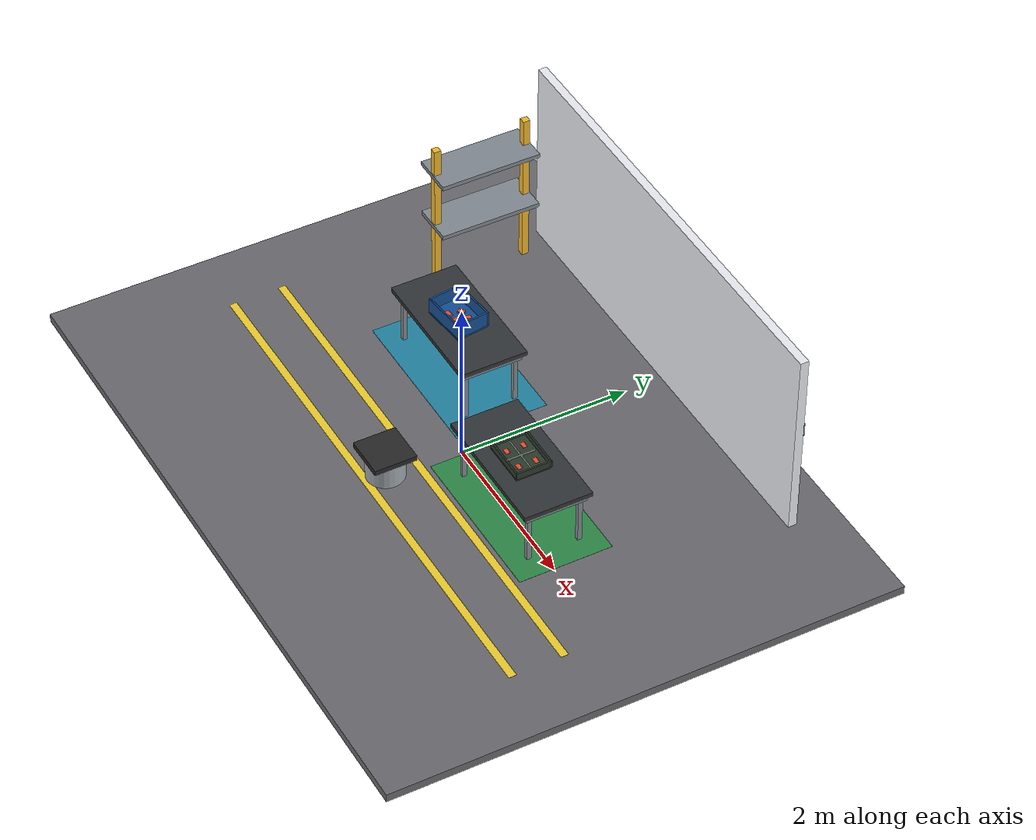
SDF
<?xml version="1.0"?>
<sdf version="1.6">
  <world name="factory_binpick">
    <gravity>0 0 -9.81</gravity>
    <scene>
      <ambient>0.70 0.72 0.75 1</ambient>
      <background>0.93 0.95 0.98 1</background>
      <shadows>true</shadows>
    </scene>
    <physics type="ode">
      <max_step_size>0.001</max_step_size>
      <real_time_update_rate>1000</real_time_update_rate>
      <real_time_factor>1</real_time_factor>
    </physics>

    <light name="sun" type="directional">
      <cast_shadows>true</cast_shadows>
      <pose>0 0 8 0 0 0</pose>
      <diffuse>0.98 0.98 0.95 1</diffuse>
      <specular>0.2 0.2 0.2 1</specular>
      <attenuation>
        <range>200</range>
        <constant>0.9</constant>
        <linear>0.01</linear>
        <quadratic>0.001</quadratic>
      </attenuation>
      <direction>-0.3 0.1 -0.95</direction>
    </light>

    <include>
      <uri>model://factory_floor</uri>
      <pose>0 0 0 0 0 0</pose>
    </include>

    <include>
      <uri>model://work_table</uri>
      <name>source_table</name>
      <pose>-1.10 0.55 0 0 0 0</pose>
    </include>

    <include>
      <uri>model://work_table</uri>
      <name>dest_table</name>
      <pose>1.10 0.10 0 0 0 0</pose>
    </include>

    <include>
      <uri>model://parts_bin</uri>
      <pose>-1.10 0.55 0.80 0 0 0.12</pose>
    </include>

    <include>
      <uri>model://kitting_tray</uri>
      <pose>1.10 0.10 0.80 0 0 0</pose>
    </include>

    <include>
      <uri>model://battery_brick</uri>
      <name>part_a</name>
      <pose>-1.18 0.47 0.845 0 0 0.15</pose>
    </include>

    <include>
      <uri>model://battery_brick</uri>
      <name>part_b</name>
      <pose>-1.06 0.49 0.845 0 0 1.57</pose>
    </include>

    <include>
      <uri>model://battery_brick</uri>
      <name>part_c</name>
      <pose>-1.15 0.61 0.845 0 0 0.70</pose>
    </include>

    <include>
      <uri>model://battery_brick</uri>
      <name>part_d</name>
      <pose>-1.03 0.62 0.845 0 0 1.20</pose>
    </include>

    <model name="robot_pedestal">
      <static>true</static>
      <pose>0 -0.92 0 0 0 0</pose>
      <link name="body">
        <collision name="base_collision">
          <pose>0 0 0.20 0 0 0</pose>
          <geometry>
            <cylinder>
              <radius>0.22</radius>
              <length>0.40</length>
            </cylinder>
          </geometry>
        </collision>
        <collision name="top_collision">
          <pose>0 0 0.43 0 0 0</pose>
          <geometry>
            <box>
              <size>0.50 0.50 0.06</size>
            </box>
          </geometry>
        </collision>
        <visual name="base_visual">
          <pose>0 0 0.20 0 0 0</pose>
          <geometry>
            <cylinder>
              <radius>0.22</radius>
              <length>0.40</length>
            </cylinder>
          </geometry>
          <material>
            <ambient>0.55 0.58 0.61 1</ambient>
            <diffuse>0.64 0.67 0.70 1</diffuse>
          </material>
        </visual>
        <visual name="top_visual">
          <pose>0 0 0.43 0 0 0</pose>
          <geometry>
            <box>
              <size>0.50 0.50 0.06</size>
            </box>
          </geometry>
          <material>
            <ambient>0.12 0.12 0.12 1</ambient>
            <diffuse>0.16 0.16 0.16 1</diffuse>
          </material>
        </visual>
      </link>
    </model>

    <model name="back_wall">
      <static>true</static>
      <pose>0 2.45 0 0 0 0</pose>
      <link name="wall">
        <collision name="wall_collision">
          <pose>0 0 1.20 0 0 0</pose>
          <geometry>
            <box>
              <size>5.40 0.10 2.40</size>
            </box>
          </geometry>
        </collision>
        <visual name="wall_visual">
          <pose>0 0 1.20 0 0 0</pose>
          <geometry>
            <box>
              <size>5.40 0.10 2.40</size>
            </box>
          </geometry>
          <material>
            <ambient>0.89 0.90 0.92 1</ambient>
            <diffuse>0.94 0.95 0.97 1</diffuse>
          </material>
        </visual>
        <visual name="accent_band">
          <pose>0 0.056 1.45 0 0 0</pose>
          <geometry>
            <box>
              <size>5.40 0.01 0.18</size>
            </box>
          </geometry>
          <material>
            <ambient>0.10 0.33 0.58 1</ambient>
            <diffuse>0.12 0.40 0.70 1</diffuse>
          </material>
        </visual>
      </link>
    </model>

    <model name="storage_rack">
      <static>true</static>
      <pose>-2.45 1.55 0 0 0 1.57</pose>
      <link name="rack">
        <visual name="upright_left">
          <pose>0.55 0 1.0 0 0 0</pose>
          <geometry>
            <box>
              <size>0.08 0.08 2.0</size>
            </box>
          </geometry>
          <material>
            <ambient>0.92 0.68 0.15 1</ambient>
            <diffuse>0.96 0.73 0.18 1</diffuse>
          </material>
        </visual>
        <visual name="upright_right">
          <pose>-0.55 0 1.0 0 0 0</pose>
          <geometry>
            <box>
              <size>0.08 0.08 2.0</size>
            </box>
          </geometry>
          <material>
            <ambient>0.92 0.68 0.15 1</ambient>
            <diffuse>0.96 0.73 0.18 1</diffuse>
          </material>
        </visual>
        <visual name="shelf_top">
          <pose>0 0 1.65 0 0 0</pose>
          <geometry>
            <box>
              <size>1.20 0.50 0.05</size>
            </box>
          </geometry>
          <material>
            <ambient>0.44 0.47 0.50 1</ambient>
            <diffuse>0.52 0.55 0.58 1</diffuse>
          </material>
        </visual>
        <visual name="shelf_mid">
          <pose>0 0 0.95 0 0 0</pose>
          <geometry>
            <box>
              <size>1.20 0.50 0.05</size>
            </box>
          </geometry>
          <material>
            <ambient>0.44 0.47 0.50 1</ambient>
            <diffuse>0.52 0.55 0.58 1</diffuse>
          </material>
        </visual>
      </link>
    </model>

    <gui fullscreen="0">
      <camera name="demo_camera">
        <pose>0.00 -4.35 2.70 0 0.60 1.57</pose>
      </camera>
    </gui>
  </world>
</sdf>

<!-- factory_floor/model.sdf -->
<sdf version="1.6">
  <model name="factory_floor">
    <static>true</static>
    <link name="floor">
      <collision name="slab_collision">
        <pose>0 0 0.05 0 0 0</pose>
        <geometry>
          <box>
            <size>8.0 6.0 0.10</size>
          </box>
        </geometry>
      </collision>
      <visual name="slab_visual">
        <pose>0 0 0.05 0 0 0</pose>
        <geometry>
          <box>
            <size>8.0 6.0 0.10</size>
          </box>
        </geometry>
        <material>
          <ambient>0.36 0.36 0.38 1</ambient>
          <diffuse>0.42 0.42 0.44 1</diffuse>
          <specular>0.08 0.08 0.08 1</specular>
        </material>
      </visual>
      <visual name="lane_left">
        <pose>0 -1.15 0.101 0 0 0</pose>
        <geometry>
          <box>
            <size>6.4 0.09 0.002</size>
          </box>
        </geometry>
        <material>
          <ambient>0.92 0.78 0.15 1</ambient>
          <diffuse>0.95 0.82 0.18 1</diffuse>
        </material>
      </visual>
      <visual name="lane_right">
        <pose>0 -0.55 0.101 0 0 0</pose>
        <geometry>
          <box>
            <size>6.4 0.09 0.002</size>
          </box>
        </geometry>
        <material>
          <ambient>0.92 0.78 0.15 1</ambient>
          <diffuse>0.95 0.82 0.18 1</diffuse>
        </material>
      </visual>
      <visual name="staging_pad_source">
        <pose>-1.10 0.55 0.101 0 0 0</pose>
        <geometry>
          <box>
            <size>1.95 1.10 0.002</size>
          </box>
        </geometry>
        <material>
          <ambient>0.12 0.43 0.53 1</ambient>
          <diffuse>0.14 0.52 0.64 1</diffuse>
        </material>
      </visual>
      <visual name="staging_pad_dest">
        <pose>1.10 0.10 0.101 0 0 0</pose>
        <geometry>
          <box>
            <size>1.95 1.10 0.002</size>
          </box>
        </geometry>
        <material>
          <ambient>0.16 0.44 0.24 1</ambient>
          <diffuse>0.18 0.54 0.28 1</diffuse>
        </material>
      </visual>
    </link>
  </model>
</sdf>

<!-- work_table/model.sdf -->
<sdf version="1.6">
  <model name="work_table">
    <static>true</static>
    <link name="table">
      <collision name="top_collision">
        <pose>0 0 0.775 0 0 0</pose>
        <geometry>
          <box>
            <size>1.60 0.80 0.05</size>
          </box>
        </geometry>
      </collision>
      <collision name="leg_fl_collision">
        <pose>0.70 0.30 0.375 0 0 0</pose>
        <geometry>
          <box>
            <size>0.05 0.05 0.75</size>
          </box>
        </geometry>
      </collision>
      <collision name="leg_fr_collision">
        <pose>0.70 -0.30 0.375 0 0 0</pose>
        <geometry>
          <box>
            <size>0.05 0.05 0.75</size>
          </box>
        </geometry>
      </collision>
      <collision name="leg_rl_collision">
        <pose>-0.70 0.30 0.375 0 0 0</pose>
        <geometry>
          <box>
            <size>0.05 0.05 0.75</size>
          </box>
        </geometry>
      </collision>
      <collision name="leg_rr_collision">
        <pose>-0.70 -0.30 0.375 0 0 0</pose>
        <geometry>
          <box>
            <size>0.05 0.05 0.75</size>
          </box>
        </geometry>
      </collision>
      <visual name="top_visual">
        <pose>0 0 0.775 0 0 0</pose>
        <geometry>
          <box>
            <size>1.60 0.80 0.05</size>
          </box>
        </geometry>
        <material>
          <ambient>0.16 0.17 0.18 1</ambient>
          <diffuse>0.20 0.21 0.22 1</diffuse>
          <specular>0.06 0.06 0.06 1</specular>
        </material>
      </visual>
      <visual name="frame_visual">
        <pose>0 0 0.69 0 0 0</pose>
        <geometry>
          <box>
            <size>1.52 0.72 0.03</size>
          </box>
        </geometry>
        <material>
          <ambient>0.43 0.46 0.48 1</ambient>
          <diffuse>0.52 0.55 0.57 1</diffuse>
        </material>
      </visual>
      <visual name="leg_fl_visual">
        <pose>0.70 0.30 0.375 0 0 0</pose>
        <geometry>
          <box>
            <size>0.05 0.05 0.75</size>
          </box>
        </geometry>
        <material>
          <ambient>0.43 0.46 0.48 1</ambient>
          <diffuse>0.52 0.55 0.57 1</diffuse>
        </material>
      </visual>
      <visual name="leg_fr_visual">
        <pose>0.70 -0.30 0.375 0 0 0</pose>
        <geometry>
          <box>
            <size>0.05 0.05 0.75</size>
          </box>
        </geometry>
        <material>
          <ambient>0.43 0.46 0.48 1</ambient>
          <diffuse>0.52 0.55 0.57 1</diffuse>
        </material>
      </visual>
      <visual name="leg_rl_visual">
        <pose>-0.70 0.30 0.375 0 0 0</pose>
        <geometry>
          <box>
            <size>0.05 0.05 0.75</size>
          </box>
        </geometry>
        <material>
          <ambient>0.43 0.46 0.48 1</ambient>
          <diffuse>0.52 0.55 0.57 1</diffuse>
        </material>
      </visual>
      <visual name="leg_rr_visual">
        <pose>-0.70 -0.30 0.375 0 0 0</pose>
        <geometry>
          <box>
            <size>0.05 0.05 0.75</size>
          </box>
        </geometry>
        <material>
          <ambient>0.43 0.46 0.48 1</ambient>
          <diffuse>0.52 0.55 0.57 1</diffuse>
        </material>
      </visual>
    </link>
  </model>
</sdf>

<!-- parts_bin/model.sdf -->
<sdf version="1.6">
  <model name="parts_bin">
    <static>true</static>
    <link name="bin">
      <collision name="base_collision">
        <pose>0 0 0.02 0 0 0</pose>
        <geometry>
          <box>
            <size>0.55 0.40 0.04</size>
          </box>
        </geometry>
      </collision>
      <collision name="wall_left_collision">
        <pose>0.265 0 0.11 0 0 0</pose>
        <geometry>
          <box>
            <size>0.02 0.40 0.18</size>
          </box>
        </geometry>
      </collision>
      <collision name="wall_right_collision">
        <pose>-0.265 0 0.11 0 0 0</pose>
        <geometry>
          <box>
            <size>0.02 0.40 0.18</size>
          </box>
        </geometry>
      </collision>
      <collision name="wall_front_collision">
        <pose>0 0.19 0.11 0 0 0</pose>
        <geometry>
          <box>
            <size>0.55 0.02 0.18</size>
          </box>
        </geometry>
      </collision>
      <collision name="wall_back_collision">
        <pose>0 -0.19 0.11 0 0 0</pose>
        <geometry>
          <box>
            <size>0.55 0.02 0.18</size>
          </box>
        </geometry>
      </collision>
      <visual name="base_visual">
        <pose>0 0 0.02 0 0 0</pose>
        <geometry>
          <box>
            <size>0.55 0.40 0.04</size>
          </box>
        </geometry>
        <material>
          <ambient>0.06 0.24 0.44 1</ambient>
          <diffuse>0.08 0.31 0.58 1</diffuse>
        </material>
      </visual>
      <visual name="wall_left_visual">
        <pose>0.265 0 0.11 0 0 0</pose>
        <geometry>
          <box>
            <size>0.02 0.40 0.18</size>
          </box>
        </geometry>
        <material>
          <ambient>0.06 0.24 0.44 1</ambient>
          <diffuse>0.08 0.31 0.58 1</diffuse>
        </material>
      </visual>
      <visual name="wall_right_visual">
        <pose>-0.265 0 0.11 0 0 0</pose>
        <geometry>
          <box>
            <size>0.02 0.40 0.18</size>
          </box>
        </geometry>
        <material>
          <ambient>0.06 0.24 0.44 1</ambient>
          <diffuse>0.08 0.31 0.58 1</diffuse>
        </material>
      </visual>
      <visual name="wall_front_visual">
        <pose>0 0.19 0.11 0 0 0</pose>
        <geometry>
          <box>
            <size>0.55 0.02 0.18</size>
          </box>
        </geometry>
        <material>
          <ambient>0.06 0.24 0.44 1</ambient>
          <diffuse>0.08 0.31 0.58 1</diffuse>
        </material>
      </visual>
      <visual name="wall_back_visual">
        <pose>0 -0.19 0.11 0 0 0</pose>
        <geometry>
          <box>
            <size>0.55 0.02 0.18</size>
          </box>
        </geometry>
        <material>
          <ambient>0.06 0.24 0.44 1</ambient>
          <diffuse>0.08 0.31 0.58 1</diffuse>
        </material>
      </visual>
      <visual name="label_visual">
        <pose>0 0.205 0.13 0 0 0</pose>
        <geometry>
          <box>
            <size>0.22 0.003 0.08</size>
          </box>
        </geometry>
        <material>
          <ambient>0.95 0.95 0.95 1</ambient>
          <diffuse>0.98 0.98 0.98 1</diffuse>
        </material>
      </visual>
    </link>
  </model>
</sdf>

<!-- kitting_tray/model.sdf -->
<sdf version="1.6">
  <model name="kitting_tray">
    <static>true</static>
    <link name="tray">
      <collision name="base_collision">
        <pose>0 0 0.015 0 0 0</pose>
        <geometry>
          <box>
            <size>0.56 0.42 0.03</size>
          </box>
        </geometry>
      </collision>
      <collision name="wall_left_collision">
        <pose>0.27 0 0.055 0 0 0</pose>
        <geometry>
          <box>
            <size>0.02 0.42 0.08</size>
          </box>
        </geometry>
      </collision>
      <collision name="wall_right_collision">
        <pose>-0.27 0 0.055 0 0 0</pose>
        <geometry>
          <box>
            <size>0.02 0.42 0.08</size>
          </box>
        </geometry>
      </collision>
      <collision name="wall_front_collision">
        <pose>0 0.20 0.055 0 0 0</pose>
        <geometry>
          <box>
            <size>0.56 0.02 0.08</size>
          </box>
        </geometry>
      </collision>
      <collision name="wall_back_collision">
        <pose>0 -0.20 0.055 0 0 0</pose>
        <geometry>
          <box>
            <size>0.56 0.02 0.08</size>
          </box>
        </geometry>
      </collision>
      <visual name="base_visual">
        <pose>0 0 0.015 0 0 0</pose>
        <geometry>
          <box>
            <size>0.56 0.42 0.03</size>
          </box>
        </geometry>
        <material>
          <ambient>0.14 0.18 0.14 1</ambient>
          <diffuse>0.18 0.23 0.18 1</diffuse>
        </material>
      </visual>
      <visual name="wall_left_visual">
        <pose>0.27 0 0.055 0 0 0</pose>
        <geometry>
          <box>
            <size>0.02 0.42 0.08</size>
          </box>
        </geometry>
        <material>
          <ambient>0.14 0.18 0.14 1</ambient>
          <diffuse>0.18 0.23 0.18 1</diffuse>
        </material>
      </visual>
      <visual name="wall_right_visual">
        <pose>-0.27 0 0.055 0 0 0</pose>
        <geometry>
          <box>
            <size>0.02 0.42 0.08</size>
          </box>
        </geometry>
        <material>
          <ambient>0.14 0.18 0.14 1</ambient>
          <diffuse>0.18 0.23 0.18 1</diffuse>
        </material>
      </visual>
      <visual name="wall_front_visual">
        <pose>0 0.20 0.055 0 0 0</pose>
        <geometry>
          <box>
            <size>0.56 0.02 0.08</size>
          </box>
        </geometry>
        <material>
          <ambient>0.14 0.18 0.14 1</ambient>
          <diffuse>0.18 0.23 0.18 1</diffuse>
        </material>
      </visual>
      <visual name="wall_back_visual">
        <pose>0 -0.20 0.055 0 0 0</pose>
        <geometry>
          <box>
            <size>0.56 0.02 0.08</size>
          </box>
        </geometry>
        <material>
          <ambient>0.14 0.18 0.14 1</ambient>
          <diffuse>0.18 0.23 0.18 1</diffuse>
        </material>
      </visual>
      <visual name="divider_x">
        <pose>0 0 0.032 0 0 0</pose>
        <geometry>
          <box>
            <size>0.01 0.34 0.01</size>
          </box>
        </geometry>
        <material>
          <ambient>0.84 0.84 0.84 1</ambient>
          <diffuse>0.90 0.90 0.90 1</diffuse>
        </material>
      </visual>
      <visual name="divider_y">
        <pose>0 0 0.032 0 0 0</pose>
        <geometry>
          <box>
            <size>0.48 0.01 0.01</size>
          </box>
        </geometry>
        <material>
          <ambient>0.84 0.84 0.84 1</ambient>
          <diffuse>0.90 0.90 0.90 1</diffuse>
        </material>
      </visual>
      <visual name="target_marker_a">
        <pose>0.13 0.10 0.031 0 0 0</pose>
        <geometry>
          <box>
            <size>0.08 0.05 0.002</size>
          </box>
        </geometry>
        <material>
          <ambient>0.86 0.26 0.18 1</ambient>
          <diffuse>0.92 0.31 0.20 1</diffuse>
        </material>
      </visual>
      <visual name="target_marker_b">
        <pose>-0.13 0.10 0.031 0 0 0</pose>
        <geometry>
          <box>
            <size>0.08 0.05 0.002</size>
          </box>
        </geometry>
        <material>
          <ambient>0.86 0.26 0.18 1</ambient>
          <diffuse>0.92 0.31 0.20 1</diffuse>
        </material>
      </visual>
      <visual name="target_marker_c">
        <pose>0.13 -0.10 0.031 0 0 0</pose>
        <geometry>
          <box>
            <size>0.08 0.05 0.002</size>
          </box>
        </geometry>
        <material>
          <ambient>0.86 0.26 0.18 1</ambient>
          <diffuse>0.92 0.31 0.20 1</diffuse>
        </material>
      </visual>
      <visual name="target_marker_d">
        <pose>-0.13 -0.10 0.031 0 0 0</pose>
        <geometry>
          <box>
            <size>0.08 0.05 0.002</size>
          </box>
        </geometry>
        <material>
          <ambient>0.86 0.26 0.18 1</ambient>
          <diffuse>0.92 0.31 0.20 1</diffuse>
        </material>
      </visual>
    </link>
  </model>
</sdf>

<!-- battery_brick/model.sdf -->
<sdf version="1.6">
  <model name="battery_brick">
    <link name="body">
      <inertial>
        <mass>0.25</mass>
        <inertia>
          <ixx>0.00008</ixx>
          <ixy>0</ixy>
          <ixz>0</ixz>
          <iyy>0.00014</iyy>
          <iyz>0</iyz>
          <izz>0.00017</izz>
        </inertia>
      </inertial>
      <collision name="collision">
        <geometry>
          <box>
            <size>0.08 0.05 0.03</size>
          </box>
        </geometry>
        <surface>
          <friction>
            <ode>
              <mu>1.0</mu>
              <mu2>1.0</mu2>
            </ode>
          </friction>
        </surface>
      </collision>
      <visual name="visual">
        <geometry>
          <box>
            <size>0.08 0.05 0.03</size>
          </box>
        </geometry>
        <material>
          <ambient>0.80 0.25 0.18 1</ambient>
          <diffuse>0.88 0.31 0.22 1</diffuse>
          <specular>0.05 0.05 0.05 1</specular>
        </material>
      </visual>
    </link>
  </model>
</sdf>
